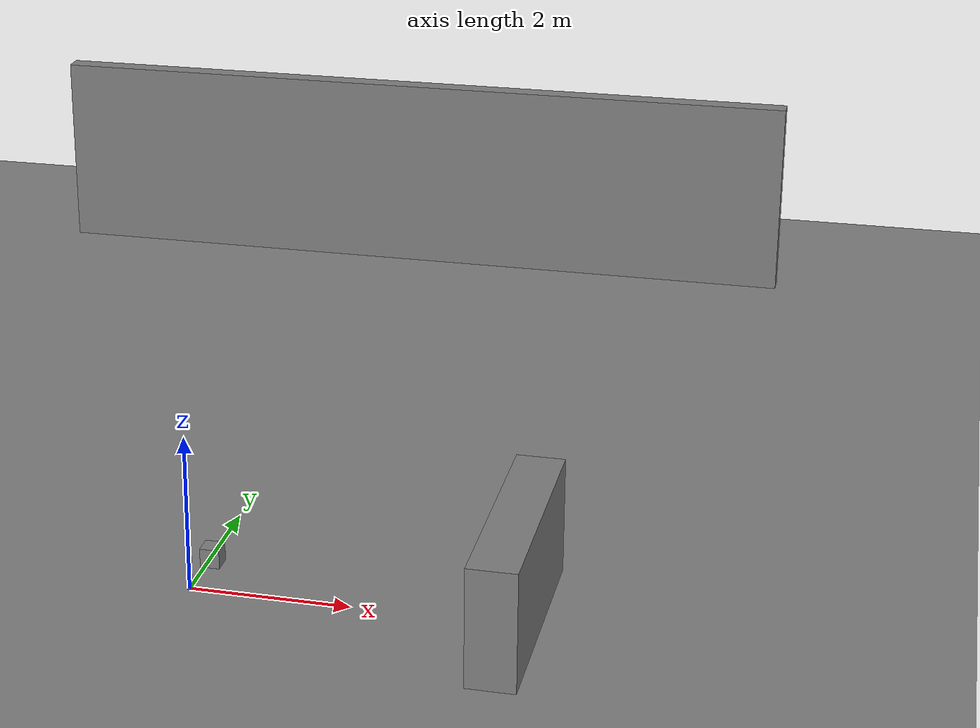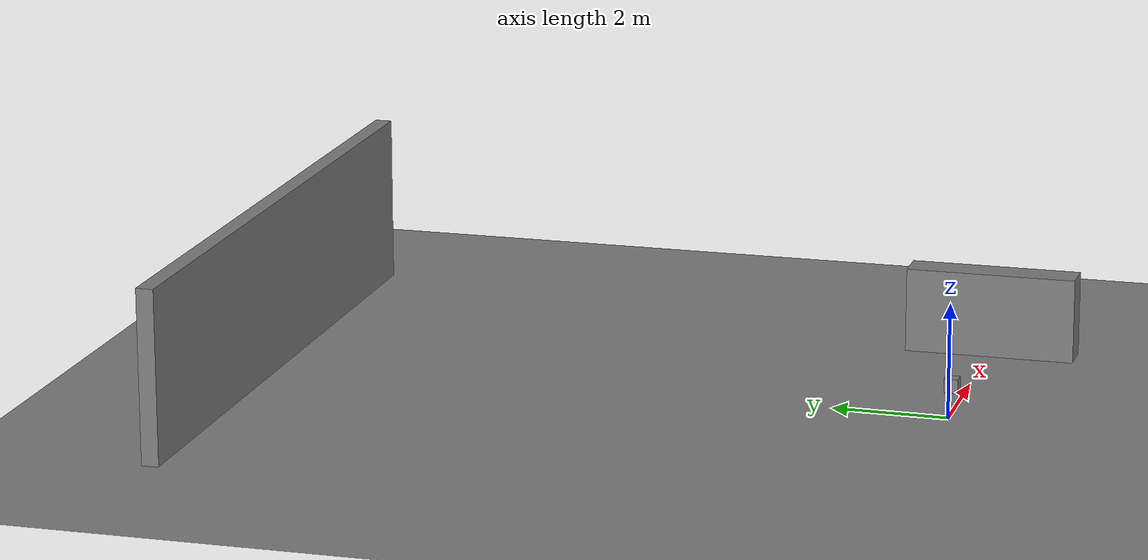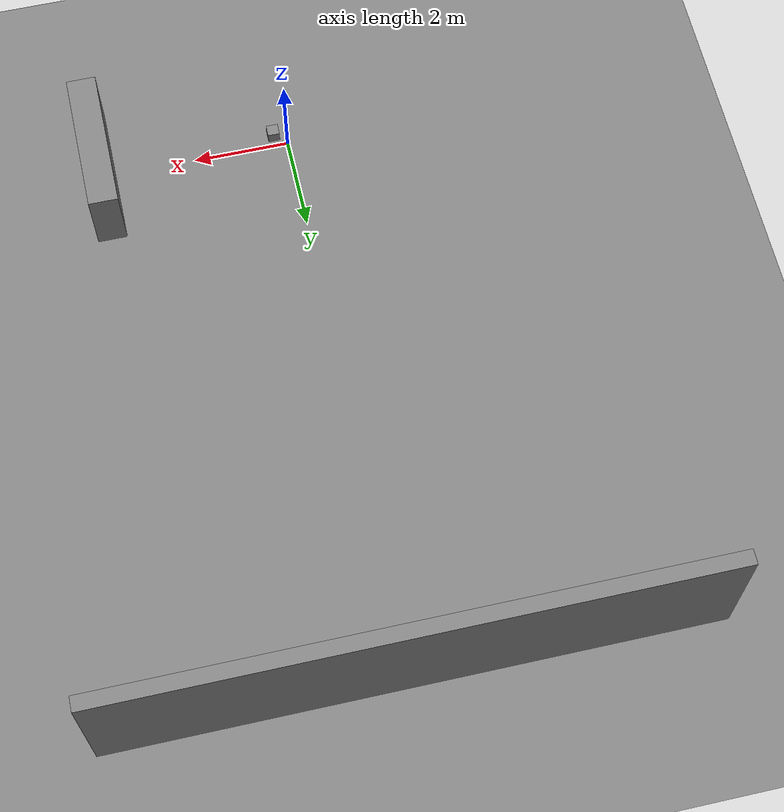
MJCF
<mujoco model="livox_mid360s_nested_mount_test">
  <compiler angle="degree"/>
  <option timestep="0.01" gravity="0 0 0"/>

  <worldbody>
    <geom name="ground" type="plane" size="40 40 0.1"/>

    <body name="lidar_mount" pos="0 0 0">
      <geom name="post" type="cylinder" pos="0 0 0.235" size="0.030 0.235"/>
      <site name="lidar_site" pos="0 0 0.500" size="0.015"/>
      <body name="lidar_bracket" pos="0.30 0 0.500">
        <geom name="lidar_bracket_geom" type="box" size="0.12 0.12 0.12"/>
      </body>
    </body>

    <!-- Directly behind the bracket. A ray that passes through the mount
         reaches this; a ray that stops on the mount never does. -->
    <body name="target_behind_bracket" pos="4.0 0 0.75">
      <geom name="target_behind_bracket_geom" type="box" size="0.30 1.50 0.75"/>
    </body>

    <body name="wall_back" pos="0 12 1.50">
      <geom name="wall_back_geom" type="box" size="6.0 0.15 1.50"/>
    </body>
  </worldbody>
</mujoco>
